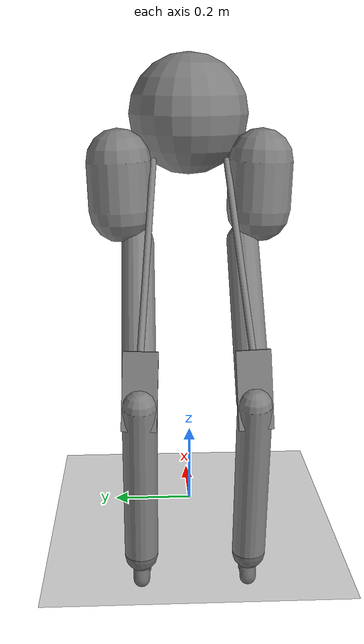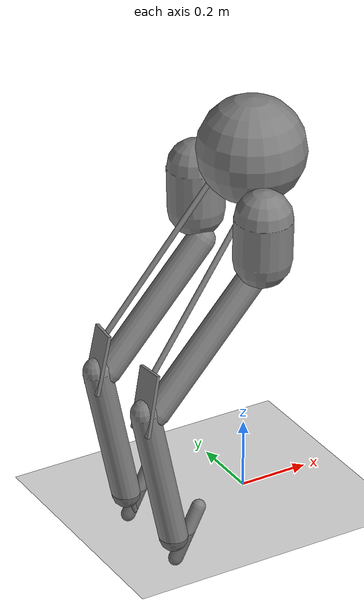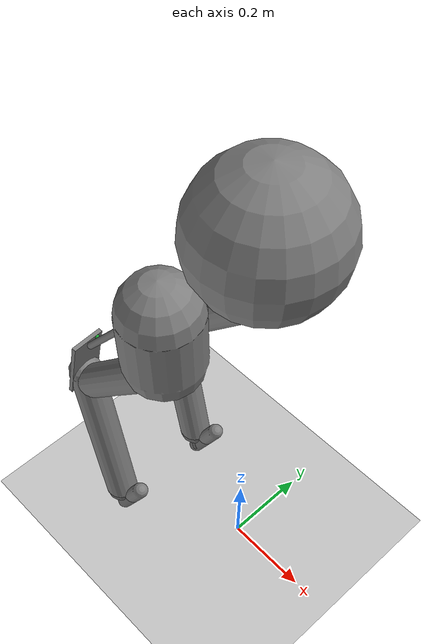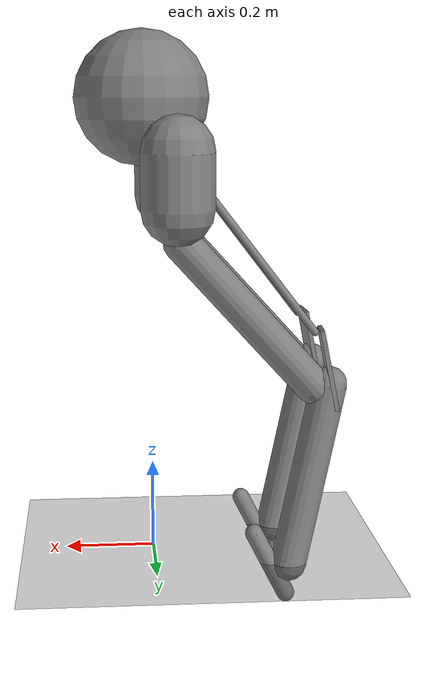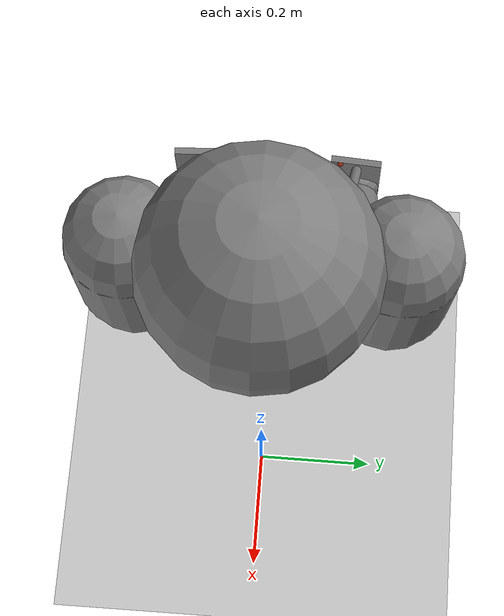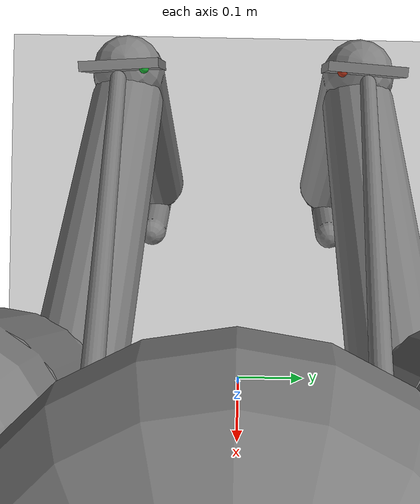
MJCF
<!-- Cassie simulation model developed by the Dynamic Robotics Laboratory -->
<mujoco model='cassie'>
  <compiler inertiafromgeom='auto' angle='degree' eulerseq='zyx' meshdir='cassie-stl-meshes'/>
  <size nuser_actuator='1' nuser_sensor='1' nuser_geom='1' nconmax='1000'/>
  <option timestep='0.0005' iterations='50' solver='Newton' gravity='0 0 -9.80665'>
    <flag midphase="disable"/>
  </option>
  <!-- Timestep is set to 0.0005 because our controller runs at 2 kHz -->
  <!-- Larger values still have stable dynamics -->

  <visual>
    <quality shadowsize='4096'/>
    <map znear='0.01' zfar='5'/>
  </visual>

  <default>
    <joint limited='true'/>
    <motor ctrllimited='true'/>
    <equality solref='0.005 1'/>
    <default class='cassie'>
      <geom group='1'/>
    </default>
    <geom conaffinity='0' contype='0'/>
    <pair condim='3' solref='0.005 1'/>
  </default>

  <asset>
    <texture type='skybox' builtin='gradient' width='128' height='128' rgb1='0.4 0.6 0.8' rgb2='0 0 0'/>
    <texture name='plane' type='2d' builtin='checker' rgb1='0.2 0.2 0.2' rgb2='0.3 0.3 0.3' width='512' height='512'/>
    <material name='plane' reflectance='0.0' texture='plane' texrepeat='1 1' texuniform='true'/>
  </asset>

  <worldbody>
    <geom name='floor' pos='0.001 0 0' size='100 10 .125' type='plane' material='plane' priority='100'/>
    <light mode='trackcom' pos='0 0 5' dir='0 0 -1'/>
    <light directional='true' pos='0 0 3' dir='0 0 -1' diffuse='0.2 0.2 0.2' specular='0 0 0'/>

    <body name='cassie-pelvis' pos='0 0 1.01' childclass='cassie'>
      <camera name='track' pos='0 -3 1' zaxis='0 -1 0.5' mode='track'/>
      <camera name='forward-chest-realsense-d435/depth/image-rect' pos='.2 0 0.2' euler='-90 0 30' fovy='58'/>
      <inertial pos='0.05066 0.000346 0.02841' mass='10.33' fullinertia='0.085821 0.049222 0.08626 1.276e-05 -0.00016022 -0.000414'/>
      <joint type='slide' axis='1 0 0' limited='false'/>
      <joint type='slide' axis='0 1 0' limited='false'/>
      <joint type='slide' axis='0 0 1' limited='false' ref='1.01'/>
      <joint type='ball' limited='false'/>
      <geom type='sphere' size='0.15' pos='0.02 0 0.02'/>
      <site name='imu' size='0.01' pos='0.03155 0 -0.07996' rgba='0.5 0.5 0.5 1.0'/>

      <body name='left-hip-roll' pos='0.021 0.135 0' xyaxes='0 0 -1 0 1 0'>
        <inertial pos='-0.01793 0.0001 -0.04428' mass='1.82' fullinertia='0.003431 0.003793 0.002135 -6.65e-07 -0.00084 3.99e-06'/>
        <joint name='left-hip-roll' type='hinge' range='-15 22.5' damping='1' armature='0.038125'/>
        <body name='left-hip-yaw' pos='0 0 -0.07' xyaxes='0 0 1 0 1 0'>
          <inertial pos='0 -1e-05 -0.034277' mass='1.171' fullinertia='0.002443 0.002803 0.000842 -4e-08 2.462e-07 -2.71e-08'/>
          <joint name='left-hip-yaw' type='hinge' range='-22.5 22.5' damping='1' armature='0.038125'/>
          <body name='left-hip-pitch' pos='0 0 -0.09' xyaxes='0 0 -1 1 0 0'>
            <inertial pos='0.05946 5e-05 -0.03581' mass='5.52' fullinertia='0.010898 0.029714 0.030257 -0.0002669 -5.721e-05 9.17e-06'/>
            <joint name='left-hip-pitch' type='hinge' range='-50 80' damping='1' armature='0.09344'/>
            <geom type='capsule' size='0.08' fromto='0 0 -0.04 0.12 0 -0.0355'/>
            <body name='left-achilles-rod' pos='0 0 0.045' xyaxes='0.7922 -0.60599 -0.072096 0.60349 0.79547 -0.054922'>
              <inertial pos='0.24719 0 0' mass='0.1567' fullinertia='3.754e-06 0.004487 0.004488 -3.74e-08 -1.61e-08 0'/>
              <joint name='left-achilles-rod' type='ball' limited='false' damping='0.01'/>
              <geom type='capsule' size='0.008' fromto='0 0 0 0.5012 0.0 0'/>
            </body>
            <body name='left-knee' pos='0.12 0 0.0045' xyaxes='0.70711 -0.70711 0 0.70711 0.70711 0'>
              <inertial pos='0.023 0.03207 -0.002181' mass='0.7578' fullinertia='0.001376 0.0010335 0.0021637 -0.00039744 -4.085e-05 -5.374e-05'/>
              <joint name='left-knee' type='hinge' ref='-45' range='-164 -37' damping='1' armature='0.09344'/>
              <body name='left-knee-spring' pos='0.06068 0.08241 0'>
                <inertial pos='0.0836 0.0034 0' mass='0.186' fullinertia='5.215e-05 0.00041205 0.0003669 6.87e-06 0 0'/>
              </body>
              <body name='left-shin' pos='0.06068 0.04741 0'>
                <inertial pos='0.18338 0.001169 0.0002123' mass='0.577' fullinertia='0.00035939 0.014728 0.014707 -0.00020981 2.266e-05 -1.2e-07'/>
                <joint name='left-shin' type='hinge' range='-20 20' stiffness='2500' damping='0.1'/>
                <geom type='capsule' size='0.04' fromto='0 0 0 0.43476 0.02 0'/>
                <body name='left-tarsus' pos='0.43476 0.02 0' xyaxes='0.52992 0.84805 0 -0.84805 0.52992 0'>
                  <inertial pos='0.11046 -0.03058 -0.00131' mass='0.782' fullinertia='0.00039238 0.013595 0.013674 0.00023651 -4.987e-05 -4.82e-06'/>
                  <joint name='left-tarsus' type='hinge' ref='58' range='50 170' damping='0.1'/>
                  <geom name='left-tarsus' type='capsule' size='0.04' fromto='-0.01269 -0.03059 0.00092 0.408 -0.04 0' />
                  <body name='left-heel-spring' pos='-0.01269 -0.03059 0.00092' xyaxes='-0.91211 0.40829 0.036948 -0.40992 -0.90952 -0.068841'>
                    <inertial pos='0.081 0.0022 0' mass='0.126' fullinertia='2.959e-05 0.00022231 0.0002007 7.15e-06 -6e-07 1e-07'/>
                    <joint name='left-heel-spring' type='hinge' limited='false' stiffness='1250'/>
                    <geom name='left-heel-spring' type='box' size='0.09 0.005 0.04' pos='0.035 0.005 0.0' />
                    <site name="left-heel-spring-pt" type="sphere" pos="0.11877 0.0 0.025" size="0.005" rgba="0.7 0.2 0.1 1.0"/>
                  </body>
                  <body name='left-foot-crank' pos='0.058 -0.034 0.02275'>
                    <inertial pos='0.00493 2e-05 -0.00215' mass='0.1261' fullinertia='2.6941e-05 4.9621e-05 6.3362e-05 -2.1e-09 -3.9623e-06 -1.09e-08'/>
                    <joint name='left-foot-crank' type='hinge' range='-140 -30' damping='1'/>
                    <body name='left-plantar-rod' pos='0.055 0 -0.00791'>
                      <inertial pos='0.17792 0 0' mass='0.1186' fullinertia='2.779e-06 0.001774 0.001775 -2.34e-08 -8.1e-09 0'/>
                      <joint name='left-plantar-rod' type='hinge' limited='false' damping='0.01'/>
                      <geom name='left-plantar-rod' type='capsule' size='0.008' fromto='0 0 0 0.35012 0.0 0'/>
                      <site name="left-plantar-rod-pt" type="sphere" pos="0.17506 0.0 0.0" size="0.005" rgba="0.7 0.2 0.1 1.0"/>
                    </body>
                  </body>
                  <body name='left-foot' pos='0.408 -0.04 0'>
                    <inertial pos='0.00474 0.02748 -0.00014' mass='0.1498' fullinertia='0.00017388 0.00016793 0.00033261 0.00011814 1.36e-06 -4e-07'/>
                    <joint name='left-foot' type='hinge' range='-140 -30' damping='1' armature='0.01225'/>
                    <geom name='left-foot' type='capsule' size='0.02' fromto='-0.052821 0.092622 0 0.069746 -0.010224 0' />
                    <site name="left-foot-mid" type="sphere" pos="0.01762 0.05219 0" euler="140 0 -90" size="0.005" rgba="0.7 0.2 0.1 1.0"/>
                    <site name="left-toe" type="sphere" pos="-0.052821 0.092622 0" size="0.005" rgba="0.7 0.2 0.1 1.0"/>
                    <site name="left-heel" type="sphere" pos="0.069746 -0.010224 0" size="0.005" rgba="0.7 0.2 0.1 1.0"/>
                  </body>
                </body>
              </body>
            </body>
          </body>
        </body>
      </body>
      <body name='right-hip-roll' pos='0.021 -0.135 0' xyaxes='0 0 -1 0 1 0'>
        <inertial pos='-0.01793 0.0001 -0.04428' mass='1.82' fullinertia='0.003431 0.003793 0.002135 6.65e-07 -0.00084 -3.99e-06'/>
        <joint name='right-hip-roll' type='hinge' range='-22.5 15' damping='1' armature='0.038125'/>
        <body name='right-hip-yaw' pos='0 0 -0.07' xyaxes='0 0 1 0 1 0'>
          <inertial pos='0 1e-05 -0.034277' mass='1.171' fullinertia='0.002443 0.002803 0.000842 4e-08 2.462e-07 2.71e-08'/>
          <joint name='right-hip-yaw' type='hinge' range='-22.5 22.5' damping='1' armature='0.038125'/>
          <body name='right-hip-pitch' pos='0 0 -0.09' xyaxes='0 0 -1 1 0 0'>
            <inertial pos='0.05946 5e-05 0.03581' mass='5.52' fullinertia='0.010898 0.029714 0.030257 -0.0002669 5.721e-05 -9.17e-06'/>
            <joint name='right-hip-pitch' type='hinge' range='-50 80' damping='1' armature='0.09344'/>
            <geom type='capsule' size='0.08' fromto='0 0 0.04 0.12 0 0.0355'/>
            <body name='right-achilles-rod' pos='0 0 -0.045' xyaxes='0.7922 -0.60599 0.072096 0.60349 0.79547 0.054922'>
              <inertial pos='0.24719 0 0' mass='0.1567' fullinertia='3.754e-06 0.004487 0.004488 -3.74e-08 1.61e-08 0'/>
              <joint name='right-achilles-rod' type='ball' limited='false' damping='0.01'/>
              <geom type='capsule' size='0.008' fromto='0 0 0 0.5012 0.0 0' />
            </body>
            <body name='right-knee' pos='0.12 0 -0.0045' xyaxes='0.70711 -0.70711 0 0.70711 0.70711 0'>
              <inertial pos='0.023 0.03207 0.002181' mass='0.7578' fullinertia='0.001376 0.0010335 0.0021637 -0.00039744 4.085e-05 5.374e-05'/>
              <joint name='right-knee' type='hinge' ref='-45' range='-164 -37' damping='1' armature='0.09344'/>
              <body name='right-knee-spring' pos='0.06068 0.08241 0'>
                <inertial pos='0.0836 0.0034 0' mass='0.186' fullinertia='5.215e-05 0.00041205 0.0003669 6.87e-06 0 0'/>
              </body>
              <body name='right-shin' pos='0.06068 0.04741 0'>
                <inertial pos='0.18338 0.001169 -0.0002123' mass='0.577' fullinertia='0.00035939 0.014728 0.014707 -0.00020981 -2.266e-05 1.2e-07'/>
                <joint name='right-shin' type='hinge' range='-20 20' stiffness='2500' damping='0.1'/>
                <geom type='capsule' size='0.04' fromto='0 0 0 0.43476 0.02 0' />
                <body name='right-tarsus' pos='0.43476 0.02 0' xyaxes='0.52992 0.84805 0 -0.84805 0.52992 0'>
                  <inertial pos='0.11046 -0.03058 0.00131' mass='0.782' fullinertia='0.00039238 0.013595 0.013674 0.00023651 4.987e-05 4.82e-06'/>
                  <joint name='right-tarsus' type='hinge' ref='58' range='50 170' damping='0.1'/>
                  <geom name='right-tarsus' type='capsule' size='0.04' fromto='-0.01269 -0.03059 -0.00092 0.408 -0.04 0' />
                  <body name='right-heel-spring' pos='-0.01269 -0.03059 -0.00092' xyaxes='-0.91211 0.40829 -0.036948 -0.40992 -0.90952 0.068841'>
                    <inertial pos='0.081 0.0022 0' mass='0.126' fullinertia='2.959e-05 0.00022231 0.0002007 7.15e-06 6e-07 -1e-07'/>
                    <joint name='right-heel-spring' type='hinge' limited='false' stiffness='1250'/>
                    <geom name='right-heel-spring' type='box' size='0.09 0.005 0.04' pos='0.035 0.005 0.0' />
                    <site name="right-heel-spring-pt" type="sphere" pos="0.11877 0.0 -0.025" size="0.005" rgba="0.1 0.7 0.2 1.0"/>
                  </body>
                  <body name='right-foot-crank' pos='0.058 -0.034 -0.02275'>
                    <inertial pos='0.00493 2e-05 0.00215' mass='0.1261' fullinertia='2.6941e-05 4.9621e-05 6.3362e-05 -2.1e-09 3.9623e-06 1.09e-08'/>
                    <joint name='right-foot-crank' type='hinge' range='-140 -30' damping='1'/>
                    <body name='right-plantar-rod' pos='0.055 0 0.00791'>
                      <inertial pos='0.17792 0 0' mass='0.1186' fullinertia='2.779e-06 0.001774 0.001775 -2.34e-08 8.1e-09 0'/>
                      <joint name='right-plantar-rod' type='hinge' limited='false' damping='0.01'/>
                      <geom name='right-plantar-rod' type='capsule' size='0.008' fromto='0 0 0 0.35012 0.0 0' />
                      <site name="right-plantar-rod-pt" type="sphere" pos="0.17506 0.0 0.0" size="0.005" rgba="0.1 0.7 0.2 1.0"/>
                    </body>
                  </body>
                  <body name='right-foot' pos='0.408 -0.04 0'>
                    <inertial pos='0.00474 0.02748 0.00014' mass='0.1498' fullinertia='0.00017388 0.00016793 0.00033261 0.00011814 -1.36e-06 4e-07'/>
                    <joint name='right-foot' type='hinge' range='-140 -30' damping='1' armature='0.01225'/>
                    <geom name='right-foot' type='capsule' size='0.02' fromto='-0.052821 0.092622 0 0.069746 -0.010224 0' />
                    <site name="right-foot-mid" type="sphere" pos="0.01762 0.05219 0" euler="140 0 -90" size="0.005" rgba="0.7 0.2 0.1 1.0"/>
                    <site name="right-toe" type="sphere" pos="-0.052821 0.092622 0.0" size="0.005" rgba="0.1 0.7 0.2 1.0"/>
                    <site name="right-heel" type="sphere" pos="0.069746 -0.010224 0" size="0.005" rgba="0.1 0.7 0.2 1.0"/>
                  </body>
                </body>
              </body>
            </body>
          </body>
        </body>
      </body>
    </body>

  </worldbody>

  <equality>
    <connect body1='left-plantar-rod'  body2='left-foot'        anchor='0.35012 0 0'/>
    <connect body1='left-achilles-rod' body2='left-heel-spring' anchor='0.5012 0 0'/>
    <connect body1='right-plantar-rod'  body2='right-foot'        anchor='0.35012 0 0'/>
    <connect body1='right-achilles-rod' body2='right-heel-spring' anchor='0.5012 0 0'/>
  </equality>

  <contact>
    <pair geom1="right-foot" geom2="floor"/>
    <pair geom1="left-foot" geom2="floor"/>
    <pair geom1="right-tarsus" geom2="floor"/>
    <pair geom1="left-tarsus" geom2="floor"/>
    <pair geom1="right-heel-spring" geom2="floor"/>
    <pair geom1="left-heel-spring" geom2="floor"/>
    <pair geom1="right-plantar-rod" geom2="floor"/>
    <pair geom1="left-plantar-rod" geom2="floor"/>
    <pair geom1="right-tarsus" geom2="left-tarsus"/>
    <pair geom1="right-tarsus" geom2="left-foot"/>
    <pair geom1="left-tarsus" geom2="right-tarsus"/>
    <pair geom1="right-heel-spring" geom2="left-heel-spring"/>
    <pair geom1="right-plantar-rod" geom2="left-plantar-rod"/>
  </contact>

  <actuator>
    <!-- User parameter is the maximum no-load motor RPM -->
    <motor name='left-hip-roll'  joint='left-hip-roll'  gear='25' ctrllimited='true' ctrlrange='-4.5 4.5'   user='2900'/>
    <motor name='left-hip-yaw'   joint='left-hip-yaw'   gear='25' ctrllimited='true' ctrlrange='-4.5 4.5'   user='2900'/>
    <motor name='left-hip-pitch' joint='left-hip-pitch' gear='16' ctrllimited='true' ctrlrange='-12.2 12.2' user='1300'/>
    <motor name='left-knee'      joint='left-knee'      gear='16' ctrllimited='true' ctrlrange='-12.2 12.2' user='1300'/>
    <motor name='left-foot'      joint='left-foot'      gear='50' ctrllimited='true' ctrlrange='-0.9 0.9'   user='5500'/>
    <motor name='right-hip-roll'  joint='right-hip-roll'  gear='25' ctrllimited='true' ctrlrange='-4.5 4.5'   user='2900'/>
    <motor name='right-hip-yaw'   joint='right-hip-yaw'   gear='25' ctrllimited='true' ctrlrange='-4.5 4.5'   user='2900'/>
    <motor name='right-hip-pitch' joint='right-hip-pitch' gear='16' ctrllimited='true' ctrlrange='-12.2 12.2' user='1300'/>
    <motor name='right-knee'      joint='right-knee'      gear='16' ctrllimited='true' ctrlrange='-12.2 12.2' user='1300'/>
    <motor name='right-foot'      joint='right-foot'      gear='50' ctrllimited='true' ctrlrange='-0.9 0.9'   user='5500'/>
  </actuator>

  <sensor>
    <!-- User parameter is the number of absolute encoder bits -->
    <actuatorpos name='left-hip-roll-input'  actuator='left-hip-roll'  user='13'/>
    <actuatorpos name='left-hip-yaw-input'   actuator='left-hip-yaw'   user='13'/>
    <actuatorpos name='left-hip-pitch-input' actuator='left-hip-pitch' user='13'/>
    <actuatorpos name='left-knee-input'      actuator='left-knee'      user='13'/>
    <actuatorpos name='left-foot-input'      actuator='left-foot'      user='18'/>
    <jointpos    name='left-shin-output'     joint='left-shin'         user='18' noise='2e-4'/>
    <jointpos    name='left-tarsus-output'   joint='left-tarsus'       user='18' noise='2e-4'/>
    <jointpos    name='left-foot-output'     joint='left-foot'         user='13'/>
    <actuatorpos name='right-hip-roll-input'  actuator='right-hip-roll'   user='13'/>
    <actuatorpos name='right-hip-yaw-input'   actuator='right-hip-yaw'    user='13'/>
    <actuatorpos name='right-hip-pitch-input' actuator='right-hip-pitch'  user='13'/>
    <actuatorpos name='right-knee-input'      actuator='right-knee'       user='13'/>
    <actuatorpos name='right-foot-input'      actuator='right-foot'       user='18'/>
    <jointpos    name='right-shin-output'     joint='right-shin'          user='18' noise='2e-4'/>
    <jointpos    name='right-tarsus-output'   joint='right-tarsus'        user='18' noise='2e-4'/>
    <jointpos    name='right-foot-output'     joint='right-foot'          user='13'/>

    <framequat     name='pelvis-orientation' objtype='site' objname='imu'/>
    <gyro          name='pelvis-angular-velocity'    site='imu' noise='5e-4' cutoff='34.9'/>
    <accelerometer name='pelvis-linear-acceleration' site='imu' noise='1e-2' cutoff='157'/>
    <magnetometer  name='pelvis-magnetometer'        site='imu'/>
  </sensor>

</mujoco>
